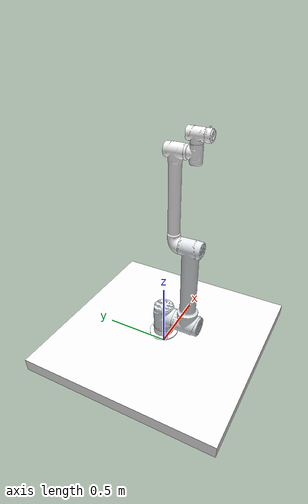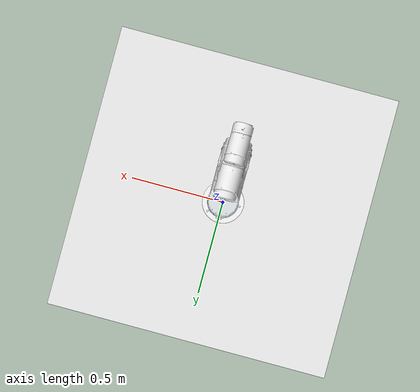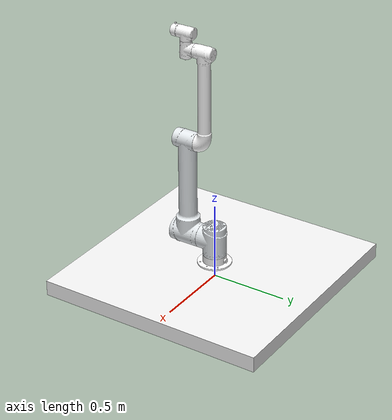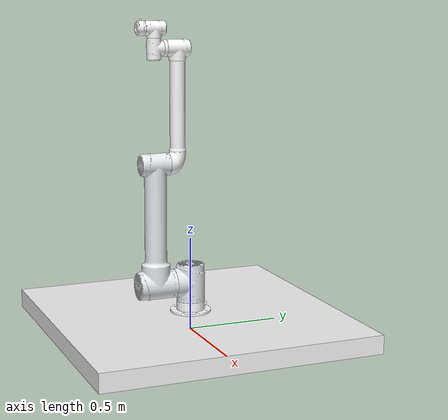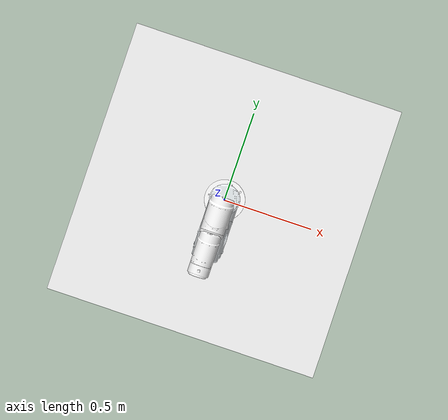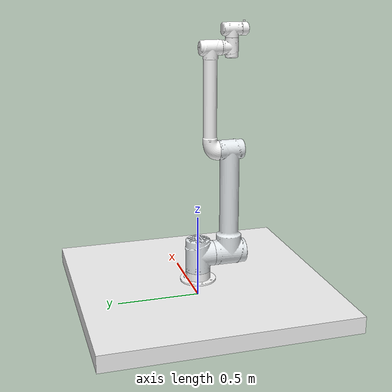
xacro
<?xml version="1.0"?>
<robot name="aubo_i10" xmlns:xacro="http://ros.org/wiki/xacro">

 <!-- Defining the colors used in this robot -->
    <material name="Black">
        <color rgba="0 0 0 1"/>
    </material>

    <material name="White">
        <color rgba="1 1 1 1"/>
    </material>

    <material name="Blue">
        <color rgba="0 0 1 1"/>
    </material>

    <material name="Red">
        <color rgba="1 0 0 1"/>
    </material>

    <material name="Grey">
        <color rgba="0.96 0.96 0.96 1"/>
    </material>

    <xacro:property name="M_PI" value="3.14159"/>

    <!--/////////////////// DYNAMICS PARAM //////////////////////-->

    <xacro:macro name="I10_Shoulder_Inertia">
        <origin xyz="0.0
                     0.0176
                    -0.0259"
                rpy="0 0 0" />
        <mass value= "10.2" />
        <inertia ixx="0.0446"
                 ixy="0.0"
                 ixz="0.0"
                 iyy="0.0419"
                 iyz="0.0036"
                 izz="0.0398" />
    </xacro:macro>

    <xacro:macro name="I10_UpperArm_Inertia">
        <origin xyz="0.2822
                     0.0001
                    -0.0211"
                rpy="0 0 0" />
        <mass value= "18.55" />
        <inertia ixx="0.0419"
                 ixy="0.0"
                 ixz="0.0036"
                 iyy="0.0446"
                 iyz="0.0"
                 izz="0.0398" />
    </xacro:macro>

    <xacro:macro name="I10_ForeArm_Inertia">
        <origin xyz="0.3555
                     0.0
                     0.1177"
                rpy="0 0 0" />
        <mass value= "4.406" />
        <inertia ixx="0.0008"
                 ixy="0.0"
                 ixz="0.0001"
                 iyy="0.000"
                 iyz="0.0"
                 izz="0.0012" />
    </xacro:macro>

    <xacro:macro name="I10_Wrist1_Inertia">
        <origin xyz="0.0
                     0.0028
                     -0.003"
                rpy="0 0 0" />
        <mass value= "1.62" />
        <inertia ixx="0.0075"
                 ixy="0.0"
                 ixz="0.0"
                 iyy="0.0052"
                 iyz="0.0002"
                 izz="0.0071" />
    </xacro:macro>

    <xacro:macro name="I10_Wrist2_Inertia">
        <origin xyz="0.0
                     0.0028
                     -0.003"
                rpy="0 0 0" />
        <mass value= "1.62" />
        <inertia ixx="0.0075"
                 ixy="0.0"
                 ixz="0.0"
                 iyy="0.0052"
                 iyz="-0.0002"
                 izz="0.0071" />
    </xacro:macro>

    <xacro:macro name="I10_Wrist3_Inertia">
        <origin xyz="0.0
                     0.00023722
                     -0.018629"
                rpy="0 0 0" />
        <mass value= "0.40" />
        <inertia ixx="0.0004"
                 ixy="0.0"
                 ixz="0.0"
                 iyy="0.0004"
                 iyz="0.0"
                 izz="0.0007" />
    </xacro:macro>

 <!--/////////////////////////////// BASE_LINK ////////////////////////////////////-->

  <link name="base_link">
    <inertial>
      <origin xyz="0.0 0.00054789 0.02299" rpy="0 0 0" />
      <mass value="1.2345" />
      <inertia ixx="0.0029215" ixy="2.2046E-07" ixz="-3.4773E-08" iyy="0.0028546" iyz="-7.6362E-06" izz="0.0051176" />
    </inertial>
    <visual>
      <origin xyz="0 0 0" rpy="0 0 0" />
      <geometry>
        <mesh filename="package://aubo_description/meshes/aubo_i10/base_link.DAE" />
      </geometry>
      <material name="">
        <color rgba="1 1 1 1" />
      </material>
    </visual>
    <collision>
      <origin xyz="0 0 0" rpy="0 0 0" />
      <geometry>
        <mesh filename="package://aubo_description/meshes/aubo_i10/base_link.STL" />
      </geometry>
    </collision>
  </link>

<!--/////////////////////////////// SHOULDER_LINK ////////////////////////////////////-->

  <link name="shoulder_Link">
    <inertial>
      <xacro:I10_Shoulder_Inertia />
    </inertial>
    <visual>
      <origin xyz="0 0 0" rpy="0 0 0" />
      <geometry>
        <mesh
          filename="package://aubo_description/meshes/aubo_i10/shoulder_Link.DAE" />
      </geometry>
      <material name="">
        <color rgba="0.89804 0.91765 0.92941 1" />
      </material>
    </visual>
    <collision>
      <origin xyz="0 0 0" rpy="0 0 0" />
      <geometry>
        <mesh filename="package://aubo_description/meshes/aubo_i10/shoulder_Link.STL" />
      </geometry>
    </collision>
  </link>

<!--/////////////////////////////// SHOULDER_JOINT ////////////////////////////////////-->

  <joint name="shoulder_joint" type="revolute">
    <origin xyz="0 0 0.1632" rpy="0.0 0.0 3.1416" />
    <parent link="base_link" />
    <child link="shoulder_Link" />
    <axis xyz="0 0 1" />
    <limit lower="-3.04" upper="3.04" effort="1000" velocity="100" />
  </joint>

<!--/////////////////////////////// UPPERARM_LINK ////////////////////////////////////-->

  <link name="upperArm_Link">
    <inertial>
      <xacro:I10_UpperArm_Inertia />
    </inertial>
    <visual>
      <origin xyz="0 0 0" rpy="0 0 0" />
      <geometry>
        <mesh filename="package://aubo_description/meshes/aubo_i10/upperArm_Link.DAE" />
      </geometry>
      <material name="">
        <color rgba="0.89804 0.91765 0.92941 1" />
      </material>
    </visual>
    <collision>
      <origin xyz="0 0 0" rpy="0 0 0" />
      <geometry>
        <mesh filename="package://aubo_description/meshes/aubo_i10/upperArm_Link.STL" />
      </geometry>
    </collision>
  </link>

<!--/////////////////////////////// UPPERARM_JOINT ////////////////////////////////////-->

  <joint name="upperArm_joint" type="revolute">
    <origin xyz="0 0.2013 0" rpy="-1.5708 -1.5708 0" />
    <parent link="shoulder_Link" />
    <child link="upperArm_Link" />
    <axis xyz="0 0 1" />
    <limit lower="-3.04" upper="3.04" effort="1000" velocity="100" />
  </joint>

<!--/////////////////////////////// FOREARM_LINK ////////////////////////////////////-->

  <link name="foreArm_Link">
    <inertial>
      <xacro:I10_ForeArm_Inertia />
    </inertial>
    <visual>
      <origin xyz="0 0 0" rpy="0 0 0" />
      <geometry>
        <mesh filename="package://aubo_description/meshes/aubo_i10/foreArm_Link.DAE" />
      </geometry>
      <material name="">
        <color rgba="1 1 1 1" />
      </material>
    </visual>
    <collision>
      <origin xyz="0 0 0" rpy="0 0 0" />
      <geometry>
        <mesh filename="package://aubo_description/meshes/aubo_i10/foreArm_Link.STL" />
      </geometry>
    </collision>
  </link>

<!--/////////////////////////////// FOREARM_JOINT ////////////////////////////////////-->

  <joint name="foreArm_joint" type="revolute">
    <origin xyz="0.647 0 0" rpy="3.1416 0.0 0.0" />
    <parent link="upperArm_Link" />
    <child link="foreArm_Link" />
    <axis xyz="0 0 1" />
    <limit lower="-3.04" upper="3.04" effort="1000" velocity="100" />
  </joint>

<!--/////////////////////////////// WRIST1_LINK ////////////////////////////////////-->

  <link name="wrist1_Link">
    <inertial>
      <xacro:I10_Wrist1_Inertia />
    </inertial>
    <visual>
      <origin xyz="0 0 0" rpy="0 0 0" />
      <geometry>
        <mesh filename="package://aubo_description/meshes/aubo_i10/wrist1_Link.DAE" />
      </geometry>
      <material name="">
        <color rgba="1 1 1 1" />
      </material>
    </visual>
    <collision>
      <origin xyz="0 0 0" rpy="0 0 0" />
      <geometry>
        <mesh filename="package://aubo_description/meshes/aubo_i10/wrist1_Link.STL" />
      </geometry>
    </collision>
  </link>

<!--/////////////////////////////// WRIST1_JOINT ////////////////////////////////////-->

  <joint name="wrist1_joint" type="revolute">
    <origin xyz="0.6005 0 0" rpy="-3.1416 0.0 1.5708" />
    <parent link="foreArm_Link" />
    <child link="wrist1_Link" />
    <axis xyz="0 0 1" />
    <limit lower="-3.04" upper="3.04" effort="1000" velocity="100" />
  </joint>

<!--/////////////////////////////// WRIST2_LINK ////////////////////////////////////-->

  <link name="wrist2_Link">
    <inertial>
      <xacro:I10_Wrist2_Inertia />
    </inertial>
    <visual>
      <origin xyz="0 0 0" rpy="0 0 0" />
      <geometry>
        <mesh filename="package://aubo_description/meshes/aubo_i10/wrist2_Link.DAE" />
      </geometry>
      <material name="">
        <color rgba="1 1 1 1" />
      </material>
    </visual>
    <collision>
      <origin xyz="0 0 0" rpy="0 0 0" />
      <geometry>
        <mesh filename="package://aubo_description/meshes/aubo_i10/wrist2_Link.STL" />
      </geometry>
    </collision>
  </link>

<!--/////////////////////////////// WRIST2_JOINT ////////////////////////////////////-->

  <joint name="wrist2_joint" type="revolute">
    <origin xyz="0 0.1025 0" rpy="-1.5708 0.0 0.0" />
    <parent link="wrist1_Link" />
    <child link="wrist2_Link" />
    <axis xyz="0 0 1" />
    <limit lower="-3.04" upper="3.04" effort="1000" velocity="100" />
  </joint>

<!--/////////////////////////////// WRIST3_LINK ////////////////////////////////////-->

  <link name="wrist3_Link">
    <inertial>
      <xacro:I10_Wrist3_Inertia />
    </inertial>
    <visual>
      <origin xyz="0 0 0" rpy="0 0 0" />
      <geometry>
        <mesh filename="package://aubo_description/meshes/aubo_i10/wrist3_Link.DAE" />
      </geometry>
      <material name="">
        <color rgba="1 1 1 1" />
      </material>
    </visual>
    <collision>
      <origin xyz="0 0 0" rpy="0 0 0" />
      <geometry>
        <mesh filename="package://aubo_description/meshes/aubo_i10/wrist3_Link.STL" />
      </geometry>
    </collision>
  </link>

<!--/////////////////////////////// WRIST3_JOINT ////////////////////////////////////-->

  <joint name="wrist3_joint" type="revolute">
    <origin xyz="0 -0.094 0" rpy="1.5708 0 0.0" />
    <parent link="wrist2_Link" />
    <child link="wrist3_Link" />
    <axis xyz="0 0 1" />
    <limit lower="-3.04" upper="3.04" effort="1000" velocity="100" />
  </joint>

 <!--/////////////////////////////// WORLD ////////////////////////////////////-->

  <link name="world" />

 <!--/////////////////////////////// WORLD_JOINT ////////////////////////////////////-->

  <joint name="world_joint" type="fixed">
    <origin xyz="0 0 0.05" rpy="0 0 0" />
    <parent link="world" />
    <child link = "pedestal_Link" />
    <origin xyz="0.0 0.0 0.0" rpy="0.0 0.0 0.0" />
  </joint>

 <!--/////////////////////////////// pedestal_Link ////////////////////////////////////-->

  <link name="pedestal_Link">
    <visual>
     <geometry>
       <box size="1.5 1.5 0.1" />
     </geometry>
     <material name="">
        <color rgba="0.96 0.96 0.96 1" />
     </material>
    </visual>
   </link>

 <!--/////////////////////////////// pedestal_JOINIT ////////////////////////////////////-->

<joint name="pedestal_joint" type="fixed">
    <origin xyz="0 0 0.051" rpy="0 0 0" />
    <parent link="pedestal_Link" />
    <child link = "base_link" />
    <origin xyz="0.0 0.0 0.0" rpy="0.0 0.0 0.0" />
  </joint>

  <!-- /////////////////////////////////   gazebo color   ////////////////////////////////////// -->
  <gazebo reference="pedestal_Link">
     <material>Gazebo/Grey</material>
  </gazebo>

  <!--////////////////////////////////// Transmissions for ROS Control //////////////////////////-->

  <xacro:macro name="aubo_arm_transmission" params="joint_name">
      <transmission name="${joint_name}_trans">
        <type>transmission_interface/SimpleTransmission</type>
        <joint name="${joint_name}">
          <hardwareInterface>hardware_interface/PositionJointInterface</hardwareInterface>
        </joint>
        <actuator name="${joint_name}_motor">
          <mechanicalReduction>1</mechanicalReduction>
        </actuator>
      </transmission>
  </xacro:macro>

  <xacro:aubo_arm_transmission joint_name="shoulder_joint"/>
  <xacro:aubo_arm_transmission joint_name="upperArm_joint"/>
  <xacro:aubo_arm_transmission joint_name="foreArm_joint"/>
  <xacro:aubo_arm_transmission joint_name="wrist1_joint"/>
  <xacro:aubo_arm_transmission joint_name="wrist2_joint"/>
  <xacro:aubo_arm_transmission joint_name="wrist3_joint"/>

  <!-- ros_control plugin -->
  <gazebo>
      <plugin name="gazebo_ros_control" filename="libgazebo_ros_control.so">
          <robotNamespace>/aubo_i10</robotNamespace>
      </plugin>
  </gazebo>

</robot>
